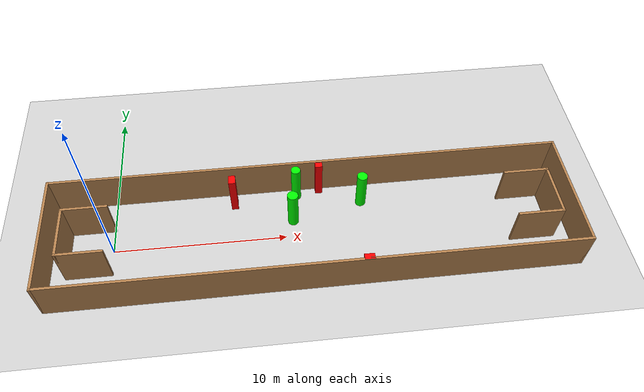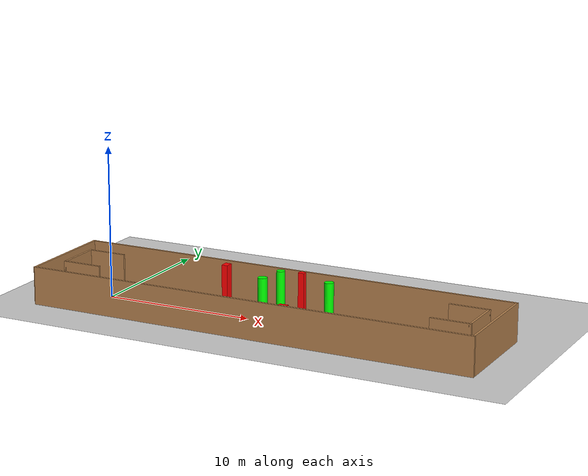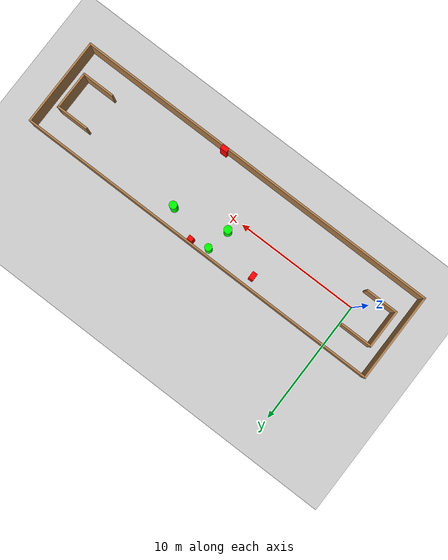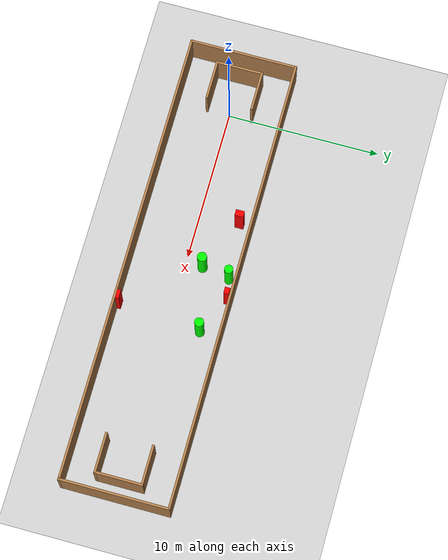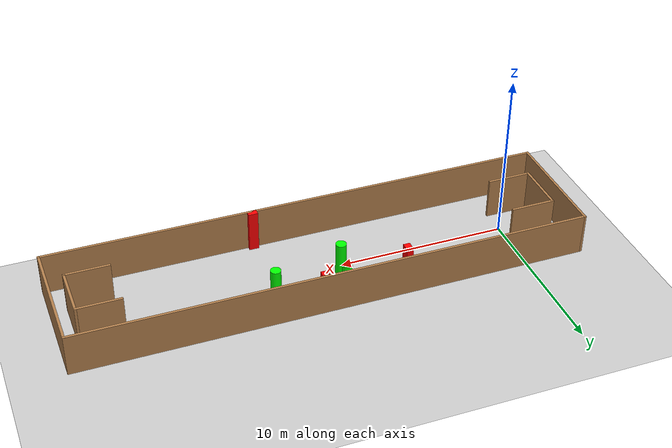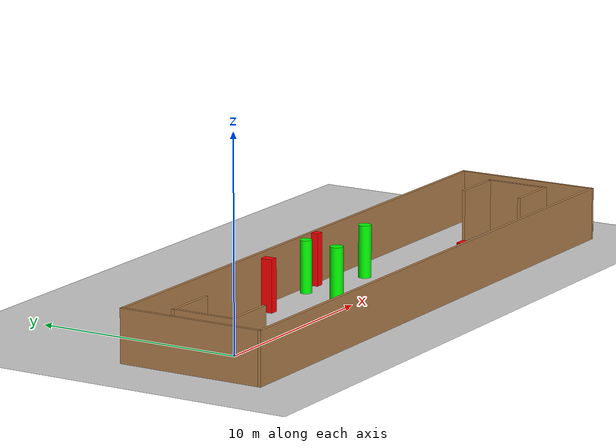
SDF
<sdf version="1.7">
 <world name="default">
  <light name="sun" type="directional">
   <pose>0 0 10 0 -0 0</pose>
   <diffuse>0.8 0.8 0.8 1</diffuse>
   <specular>0.2 0.2 0.2 1</specular>
   <attenuation>
    <range>1000</range>
    <constant>0.9</constant>
    <linear>0.01</linear>
    <quadratic>0.001</quadratic>
   </attenuation>
   <direction>-0.5 0.1 -0.9</direction>
   <spot><inner_angle>0</inner_angle><outer_angle>0</outer_angle><falloff>0</falloff></spot>
  </light>
  <model name="ground_plane">
   <static>1</static>
   <link name="link">
    <collision name="collision">
     <geometry><plane><normal>0 0 1</normal><size>100 100</size></plane></geometry>
     <surface>
      <contact><collide_bitmask>65535</collide_bitmask></contact>
      <friction><ode><mu>100</mu><mu2>50</mu2></ode></friction>
     </surface>
    </collision>
    <visual name="visual">
     <cast_shadows>0</cast_shadows>
     <geometry><plane><normal>0 0 1</normal><size>100 100</size></plane></geometry>
     <material>
      <script><uri>file://media/materials/scripts/gazebo.material</uri><name>Gazebo/Grey</name></script>
     </material>
    </visual>
   </link>
  </model>
  <gravity>0 0 -9.8</gravity>
  <magnetic_field>6e-06 2.3e-05 -4.2e-05</magnetic_field>
  <atmosphere type="adiabatic"/>
  <physics type="ode">
   <max_step_size>0.001</max_step_size>
   <real_time_factor>1</real_time_factor>
   <real_time_update_rate>1000</real_time_update_rate>
  </physics>
  <scene><ambient>0.4 0.4 0.4 1</ambient><background>0.7 0.7 0.7 1</background><shadows>1</shadows></scene>
  <spherical_coordinates>
   <surface_model>EARTH_WGS84</surface_model>
   <latitude_deg>0</latitude_deg>
   <longitude_deg>0</longitude_deg>
   <elevation>0</elevation>
   <heading_deg>0</heading_deg>
  </spherical_coordinates>
  <model name="my_base_walls">
   <link name="Wall_0">
    <collision name="Wall_0_Collision">
     <geometry><box><size>7.15 0.15 2.5</size></box></geometry>
     <pose>0 0 1.25 0 -0 0</pose>
    </collision>
    <visual name="Wall_0_Visual">
     <pose>0 0 1.25 0 -0 0</pose>
     <geometry><box><size>7.15 0.15 2.5</size></box></geometry>
     <material>
      <script><uri>file://media/materials/scripts/gazebo.material</uri><name>Gazebo/Wood</name></script>
      <ambient>1 1 1 1</ambient>
     </material>
     <meta><layer>0</layer></meta>
    </visual>
    <pose>-15 0 0 0 -0 1.5708</pose>
   </link>
   <link name="Wall_10">
    <collision name="Wall_10_Collision">
     <geometry><box><size>2.65 0.15 2.5</size></box></geometry>
     <pose>0 0 1.25 0 -0 0</pose>
    </collision>
    <visual name="Wall_10_Visual">
     <pose>0 0 1.25 0 -0 0</pose>
     <geometry><box><size>2.65 0.15 2.5</size></box></geometry>
     <material>
      <script><uri>file://media/materials/scripts/gazebo.material</uri><name>Gazebo/Wood</name></script>
      <ambient>1 1 1 1</ambient>
     </material>
     <meta><layer>0</layer></meta>
    </visual>
    <pose>-12.75 -1.5 0 0 -0 0</pose>
   </link>
   <link name="Wall_12">
    <collision name="Wall_12_Collision">
     <geometry><box><size>2.65 0.15 2.5</size></box></geometry>
     <pose>0 0 1.25 0 -0 0</pose>
    </collision>
    <visual name="Wall_12_Visual">
     <pose>0 0 1.25 0 -0 0</pose>
     <geometry><box><size>2.65 0.15 2.5</size></box></geometry>
     <material>
      <script><uri>file://media/materials/scripts/gazebo.material</uri><name>Gazebo/Wood</name></script>
      <ambient>1 1 1 1</ambient>
     </material>
     <meta><layer>0</layer></meta>
    </visual>
    <pose>-12.75 1.5 0 0 -0 0</pose>
   </link>
   <link name="Wall_14">
    <collision name="Wall_14_Collision">
     <geometry><box><size>3.15 0.15 2.5</size></box></geometry>
     <pose>0 0 1.25 0 -0 0</pose>
    </collision>
    <visual name="Wall_14_Visual">
     <pose>0 0 1.25 0 -0 0</pose>
     <geometry><box><size>3.15 0.15 2.5</size></box></geometry>
     <material>
      <script><uri>file://media/materials/scripts/gazebo.material</uri><name>Gazebo/Wood</name></script>
      <ambient>1 1 1 1</ambient>
     </material>
     <meta><layer>0</layer></meta>
    </visual>
    <pose>14 0 0 0 -0 -1.5708</pose>
   </link>
   <link name="Wall_15">
    <collision name="Wall_15_Collision">
     <geometry><box><size>2.65 0.15 2.5</size></box></geometry>
     <pose>0 0 1.25 0 -0 0</pose>
    </collision>
    <visual name="Wall_15_Visual">
     <pose>0 0 1.25 0 -0 0</pose>
     <geometry><box><size>2.65 0.15 2.5</size></box></geometry>
     <material>
      <script><uri>file://media/materials/scripts/gazebo.material</uri><name>Gazebo/Wood</name></script>
      <ambient>1 1 1 1</ambient>
     </material>
     <meta><layer>0</layer></meta>
    </visual>
    <pose>12.75 -1.5 0 0 -0 3.14159</pose>
   </link>
   <link name="Wall_17">
    <collision name="Wall_17_Collision">
     <geometry><box><size>2.65 0.15 2.5</size></box></geometry>
     <pose>0 0 1.25 0 -0 0</pose>
    </collision>
    <visual name="Wall_17_Visual">
     <pose>0 0 1.25 0 -0 0</pose>
     <geometry><box><size>2.65 0.15 2.5</size></box></geometry>
     <material>
      <script><uri>file://media/materials/scripts/gazebo.material</uri><name>Gazebo/Wood</name></script>
      <ambient>1 1 1 1</ambient>
     </material>
     <meta><layer>0</layer></meta>
    </visual>
    <pose>12.75 1.5 0 0 -0 3.14159</pose>
   </link>
   <link name="Wall_2">
    <collision name="Wall_2_Collision">
     <geometry><box><size>30.15 0.15 2.5</size></box></geometry>
     <pose>0 0 1.25 0 -0 0</pose>
    </collision>
    <visual name="Wall_2_Visual">
     <pose>0 0 1.25 0 -0 0</pose>
     <geometry><box><size>30.15 0.15 2.5</size></box></geometry>
     <material>
      <script><uri>file://media/materials/scripts/gazebo.material</uri><name>Gazebo/Wood</name></script>
      <ambient>1 1 1 1</ambient>
     </material>
     <meta><layer>0</layer></meta>
    </visual>
    <pose>-0 -3.5 0 0 -0 0</pose>
   </link>
   <link name="Wall_4">
    <collision name="Wall_4_Collision">
     <geometry><box><size>30.15 0.15 2.5</size></box></geometry>
     <pose>0 0 1.25 0 -0 0</pose>
    </collision>
    <visual name="Wall_4_Visual">
     <pose>0 0 1.25 0 -0 0</pose>
     <geometry><box><size>30.15 0.15 2.5</size></box></geometry>
     <material>
      <script><uri>file://media/materials/scripts/gazebo.material</uri><name>Gazebo/Wood</name></script>
      <ambient>1 1 1 1</ambient>
     </material>
     <meta><layer>0</layer></meta>
    </visual>
    <pose>-0 3.5 0 0 -0 0</pose>
   </link>
   <link name="Wall_6">
    <collision name="Wall_6_Collision">
     <geometry><box><size>7.15 0.15 2.5</size></box></geometry>
     <pose>0 0 1.25 0 -0 0</pose>
    </collision>
    <visual name="Wall_6_Visual">
     <pose>0 0 1.25 0 -0 0</pose>
     <geometry><box><size>7.15 0.15 2.5</size></box></geometry>
     <material>
      <script><uri>file://media/materials/scripts/gazebo.material</uri><name>Gazebo/Wood</name></script>
      <ambient>1 1 1 1</ambient>
     </material>
     <meta><layer>0</layer></meta>
    </visual>
    <pose>15 0 0 0 -0 -1.5708</pose>
   </link>
   <link name="Wall_9">
    <collision name="Wall_9_Collision">
     <geometry><box><size>3.15 0.15 2.5</size></box></geometry>
     <pose>0 0 1.25 0 -0 0</pose>
    </collision>
    <visual name="Wall_9_Visual">
     <pose>0 0 1.25 0 -0 0</pose>
     <geometry><box><size>3.15 0.15 2.5</size></box></geometry>
     <material>
      <script><uri>file://media/materials/scripts/gazebo.material</uri><name>Gazebo/Wood</name></script>
      <ambient>1 1 1 1</ambient>
     </material>
     <meta><layer>0</layer></meta>
    </visual>
    <pose>-14 0 0 0 -0 -1.5708</pose>
   </link>
   <static>1</static>
   <pose>11.5 0 0 0 -0 0</pose>
  </model>
  <model name="cylinder1">
   <static>1</static>
   <link name="link">
    <inertial>
     <mass>1</mass>
     <inertia><ixx>0.5</ixx><ixy>0</ixy><ixz>0</ixz><iyy>0.5</iyy><iyz>0</iyz><izz>1</izz></inertia>
    </inertial>
    <collision name="collision">
     <geometry><cylinder><radius>0.27889824115870987</radius><length>2.5</length></cylinder></geometry>
    </collision>
    <visual name="visual">
     <geometry><cylinder><radius>0.27889824115870987</radius><length>2.5</length></cylinder></geometry>
     <material>
      <ambient>0 1 0 1</ambient>
      <diffuse>0 1 0 1</diffuse>
      <specular>0.1 0.1 0.1 1</specular>
      <emissive>0 0 0 0</emissive>
     </material>
    </visual>
   </link>
   <pose>10.835490897127029 2.952894438965169 1.25 0 0 0</pose>
  </model>
  <model name="cylinder2">
   <static>1</static>
   <link name="link">
    <inertial>
     <mass>1</mass>
     <inertia><ixx>0.5</ixx><ixy>0</ixy><ixz>0</ixz><iyy>0.5</iyy><iyz>0</iyz><izz>1</izz></inertia>
    </inertial>
    <collision name="collision">
     <geometry><cylinder><radius>0.3111711798236738</radius><length>2.5</length></cylinder></geometry>
    </collision>
    <visual name="visual">
     <geometry><cylinder><radius>0.3111711798236738</radius><length>2.5</length></cylinder></geometry>
     <material>
      <ambient>0 1 0 1</ambient>
      <diffuse>0 1 0 1</diffuse>
      <specular>0.1 0.1 0.1 1</specular>
      <emissive>0 0 0 0</emissive>
     </material>
    </visual>
   </link>
   <pose>10.493895343920215 1.1135400110430602 1.25 0 0 0</pose>
  </model>
  <model name="cylinder3">
   <static>1</static>
   <link name="link">
    <inertial>
     <mass>1</mass>
     <inertia><ixx>0.5</ixx><ixy>0</ixy><ixz>0</ixz><iyy>0.5</iyy><iyz>0</iyz><izz>1</izz></inertia>
    </inertial>
    <collision name="collision">
     <geometry><cylinder><radius>0.3021255101100898</radius><length>2.5</length></cylinder></geometry>
    </collision>
    <visual name="visual">
     <geometry><cylinder><radius>0.3021255101100898</radius><length>2.5</length></cylinder></geometry>
     <material>
      <ambient>0 1 0 1</ambient>
      <diffuse>0 1 0 1</diffuse>
      <specular>0.1 0.1 0.1 1</specular>
      <emissive>0 0 0 0</emissive>
     </material>
    </visual>
   </link>
   <pose>14.661524379374079 2.090394979880439 1.25 0 0 0</pose>
  </model>
  <model name="box1">
   <static>1</static>
   <link name="link">
    <inertial>
     <mass>1</mass>
     <inertia><ixx>0.083</ixx><ixy>0</ixy><ixz>0</ixz><iyy>0.083</iyy><iyz>0</iyz><izz>0.083</izz></inertia>
    </inertial>
    <collision name="collision">
     <geometry><box><size>0.39761383734705896 0.5716550494923917 2.5</size></box></geometry>
    </collision>
    <visual name="visual">
     <geometry><box><size>0.39761383734705896 0.5716550494923917 2.5</size></box></geometry>
     <material>
      <ambient>1 0 0 1</ambient>
      <diffuse>1 0 0 1</diffuse>
      <specular>0.1 0.1 0.1 1</specular>
      <emissive>0 0 0 0</emissive>
     </material>
    </visual>
    <sensor name="my_contact" type="contact">
     <contact><collision>box_collision</collision><topic>__default_topic__</topic></contact>
    </sensor>
   </link>
   <pose>7.0846275861368575 2.6380613741433523 1.25 0 0 0</pose>
  </model>
  <model name="box2">
   <static>1</static>
   <link name="link">
    <inertial>
     <mass>1</mass>
     <inertia><ixx>0.083</ixx><ixy>0</ixy><ixz>0</ixz><iyy>0.083</iyy><iyz>0</iyz><izz>0.083</izz></inertia>
    </inertial>
    <collision name="collision">
     <geometry><box><size>0.5719095155646374 0.34877657451505506 2.5</size></box></geometry>
    </collision>
    <visual name="visual">
     <geometry><box><size>0.5719095155646374 0.34877657451505506 2.5</size></box></geometry>
     <material>
      <ambient>1 0 0 1</ambient>
      <diffuse>1 0 0 1</diffuse>
      <specular>0.1 0.1 0.1 1</specular>
      <emissive>0 0 0 0</emissive>
     </material>
    </visual>
    <sensor name="my_contact" type="contact">
     <contact><collision>box_collision</collision><topic>__default_topic__</topic></contact>
    </sensor>
   </link>
   <pose>14.223741398691006 -3.372564634501682 1.25 0 0 0</pose>
  </model>
  <model name="box3">
   <static>1</static>
   <link name="link">
    <inertial>
     <mass>1</mass>
     <inertia><ixx>0.083</ixx><ixy>0</ixy><ixz>0</ixz><iyy>0.083</iyy><iyz>0</iyz><izz>0.083</izz></inertia>
    </inertial>
    <collision name="collision">
     <geometry><box><size>0.4168168732386912 0.3447131652958044 2.5</size></box></geometry>
    </collision>
    <visual name="visual">
     <geometry><box><size>0.4168168732386912 0.3447131652958044 2.5</size></box></geometry>
     <material>
      <ambient>1 0 0 1</ambient>
      <diffuse>1 0 0 1</diffuse>
      <specular>0.1 0.1 0.1 1</specular>
      <emissive>0 0 0 0</emissive>
     </material>
    </visual>
    <sensor name="my_contact" type="contact">
     <contact><collision>box_collision</collision><topic>__default_topic__</topic></contact>
    </sensor>
   </link>
   <pose>12.219367021988344 3.2200420545777986 1.25 0 0 0</pose>
  </model>
 </world>
</sdf>
